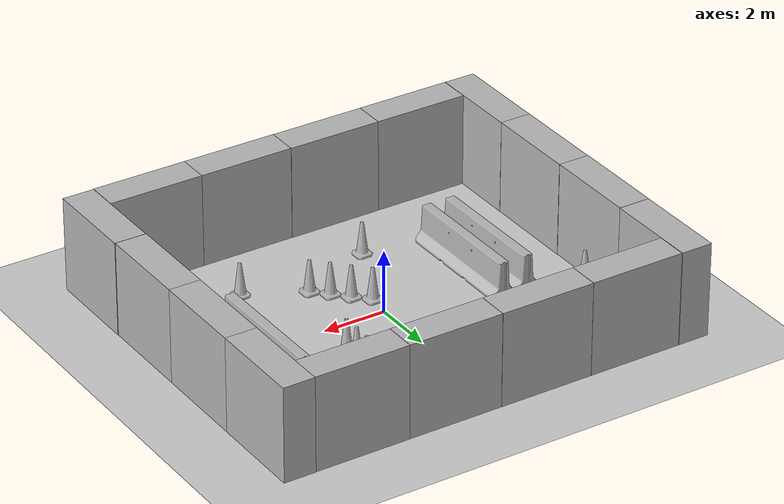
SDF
<sdf version="1.7">
 <world name="default">
  <light name="sun" type="directional">
   <cast_shadows>0</cast_shadows>
   <pose>0 0 10 0 -0 0</pose>
   <diffuse>0.8 0.8 0.8 1</diffuse>
   <specular>0.2 0.2 0.2 1</specular>
   <attenuation>
    <range>1000</range>
    <constant>0.9</constant>
    <linear>0.01</linear>
    <quadratic>0.001</quadratic>
   </attenuation>
   <direction>-0.5 0.1 -0.9</direction>
   <spot><inner_angle>0</inner_angle><outer_angle>0</outer_angle><falloff>0</falloff></spot>
  </light>
  <model name="ground_plane">
   <static>1</static>
   <link name="link">
    <collision name="collision">
     <geometry><plane><normal>0 0 1</normal><size>100 100</size></plane></geometry>
     <surface><friction><ode><mu>100</mu><mu2>50</mu2></ode></friction></surface>
    </collision>
    <visual name="visual">
     <cast_shadows>0</cast_shadows>
     <geometry><plane><normal>0 0 1</normal><size>100 100</size></plane></geometry>
     <material>
      <script><uri>file://media/materials/scripts/gazebo.material</uri><name>Gazebo/Grey</name></script>
     </material>
    </visual>
   </link>
  </model>
  <gravity>0 0 -9.8</gravity>
  <magnetic_field>6e-06 2.3e-05 -4.2e-05</magnetic_field>
  <atmosphere type="adiabatic"/>
  <physics name="default_physics" default="0" type="ode">
   <max_step_size>0.001</max_step_size>
   <real_time_factor>1</real_time_factor>
   <real_time_update_rate>1000</real_time_update_rate>
  </physics>
  <scene><ambient>0.4 0.4 0.4 1</ambient><background>0.7 0.7 0.7 1</background><shadows>0</shadows></scene>
  <spherical_coordinates>
   <surface_model>EARTH_WGS84</surface_model>
   <latitude_deg>0</latitude_deg>
   <longitude_deg>0</longitude_deg>
   <elevation>0</elevation>
   <heading_deg>0</heading_deg>
  </spherical_coordinates>
  <model name="brick_box_3x1x3">
   <static>1</static>
   <link name="chassis">
    <pose>0 0 1.5 0 -0 0</pose>
    <collision name="collision"><geometry><box><size>3 1 3</size></box></geometry></collision>
    <visual name="visual">
     <geometry><mesh><uri>model://brick_box_3x1x3/meshes/simple_box.dae</uri><scale>3 1 3</scale></mesh></geometry>
     <material>
      <script>
       <uri>model://brick_box_3x1x3/materials/scripts</uri>
       <uri>model://brick_box_3x1x3/materials/textures</uri>
       <name>BrickBox/Diffuse</name>
      </script>
     </material>
    </visual>
   </link>
   <pose>1.49178 -5.50804 0 0 -0 0</pose>
  </model>
  <model name="brick_box_3x1x3_0">
   <static>1</static>
   <link name="chassis">
    <pose>0 0 1.5 0 -0 0</pose>
    <collision name="collision"><geometry><box><size>3 1 3</size></box></geometry></collision>
    <visual name="visual">
     <geometry><mesh><uri>model://brick_box_3x1x3/meshes/simple_box.dae</uri><scale>3 1 3</scale></mesh></geometry>
     <material>
      <script>
       <uri>model://brick_box_3x1x3/materials/scripts</uri>
       <uri>model://brick_box_3x1x3/materials/textures</uri>
       <name>BrickBox/Diffuse</name>
      </script>
     </material>
    </visual>
   </link>
   <pose>-1.51043 -5.50036 0 0 -0 0</pose>
  </model>
  <model name="brick_box_3x1x3_1">
   <static>1</static>
   <link name="chassis">
    <pose>0 0 1.5 0 -0 0</pose>
    <collision name="collision"><geometry><box><size>3 1 3</size></box></geometry></collision>
    <visual name="visual">
     <geometry><mesh><uri>model://brick_box_3x1x3/meshes/simple_box.dae</uri><scale>3 1 3</scale></mesh></geometry>
     <material>
      <script>
       <uri>model://brick_box_3x1x3/materials/scripts</uri>
       <uri>model://brick_box_3x1x3/materials/textures</uri>
       <name>BrickBox/Diffuse</name>
      </script>
     </material>
    </visual>
   </link>
   <pose>1.50118 5.49225 0 0 -0 0</pose>
  </model>
  <model name="brick_box_3x1x3_2">
   <static>1</static>
   <link name="chassis">
    <pose>0 0 1.5 0 -0 0</pose>
    <collision name="collision"><geometry><box><size>3 1 3</size></box></geometry></collision>
    <visual name="visual">
     <geometry><mesh><uri>model://brick_box_3x1x3/meshes/simple_box.dae</uri><scale>3 1 3</scale></mesh></geometry>
     <material>
      <script>
       <uri>model://brick_box_3x1x3/materials/scripts</uri>
       <uri>model://brick_box_3x1x3/materials/textures</uri>
       <name>BrickBox/Diffuse</name>
      </script>
     </material>
    </visual>
   </link>
   <pose>-1.50348 5.4941 0 0 -0 0</pose>
  </model>
  <model name="brick_box_3x1x3_3">
   <static>1</static>
   <link name="chassis">
    <pose>0 0 1.5 0 -0 0</pose>
    <collision name="collision"><geometry><box><size>3 1 3</size></box></geometry></collision>
    <visual name="visual">
     <geometry><mesh><uri>model://brick_box_3x1x3/meshes/simple_box.dae</uri><scale>3 1 3</scale></mesh></geometry>
     <material>
      <script>
       <uri>model://brick_box_3x1x3/materials/scripts</uri>
       <uri>model://brick_box_3x1x3/materials/textures</uri>
       <name>BrickBox/Diffuse</name>
      </script>
     </material>
    </visual>
   </link>
   <pose>-6.5207 4.49478 0 0 -0 1.57257</pose>
  </model>
  <model name="brick_box_3x1x3_4">
   <static>1</static>
   <link name="chassis">
    <pose>0 0 1.5 0 -0 0</pose>
    <collision name="collision"><geometry><box><size>3 1 3</size></box></geometry></collision>
    <visual name="visual">
     <geometry><mesh><uri>model://brick_box_3x1x3/meshes/simple_box.dae</uri><scale>3 1 3</scale></mesh></geometry>
     <material>
      <script>
       <uri>model://brick_box_3x1x3/materials/scripts</uri>
       <uri>model://brick_box_3x1x3/materials/textures</uri>
       <name>BrickBox/Diffuse</name>
      </script>
     </material>
    </visual>
   </link>
   <pose>-4.50856 5.49143 0 0 -0 0</pose>
  </model>
  <model name="brick_box_3x1x3_5">
   <static>1</static>
   <link name="chassis">
    <pose>0 0 1.5 0 -0 0</pose>
    <collision name="collision"><geometry><box><size>3 1 3</size></box></geometry></collision>
    <visual name="visual">
     <geometry><mesh><uri>model://brick_box_3x1x3/meshes/simple_box.dae</uri><scale>3 1 3</scale></mesh></geometry>
     <material>
      <script>
       <uri>model://brick_box_3x1x3/materials/scripts</uri>
       <uri>model://brick_box_3x1x3/materials/textures</uri>
       <name>BrickBox/Diffuse</name>
      </script>
     </material>
    </visual>
   </link>
   <pose>4.5061 5.49704 0 0 -0 0</pose>
  </model>
  <model name="brick_box_3x1x3_6">
   <static>1</static>
   <link name="chassis">
    <pose>0 0 1.5 0 -0 0</pose>
    <collision name="collision"><geometry><box><size>3 1 3</size></box></geometry></collision>
    <visual name="visual">
     <geometry><mesh><uri>model://brick_box_3x1x3/meshes/simple_box.dae</uri><scale>3 1 3</scale></mesh></geometry>
     <material>
      <script>
       <uri>model://brick_box_3x1x3/materials/scripts</uri>
       <uri>model://brick_box_3x1x3/materials/textures</uri>
       <name>BrickBox/Diffuse</name>
      </script>
     </material>
    </visual>
   </link>
   <pose>-4.51318 -5.50466 0 0 -0 0</pose>
  </model>
  <model name="brick_box_3x1x3_7">
   <static>1</static>
   <link name="chassis">
    <pose>0 0 1.5 0 -0 0</pose>
    <collision name="collision"><geometry><box><size>3 1 3</size></box></geometry></collision>
    <visual name="visual">
     <geometry><mesh><uri>model://brick_box_3x1x3/meshes/simple_box.dae</uri><scale>3 1 3</scale></mesh></geometry>
     <material>
      <script>
       <uri>model://brick_box_3x1x3/materials/scripts</uri>
       <uri>model://brick_box_3x1x3/materials/textures</uri>
       <name>BrickBox/Diffuse</name>
      </script>
     </material>
    </visual>
   </link>
   <pose>4.49333 -5.50629 0 0 -0 0</pose>
  </model>
  <model name="brick_box_3x1x3_3_clone">
   <static>1</static>
   <link name="chassis">
    <pose>0 0 1.5 0 -0 0</pose>
    <collision name="collision"><geometry><box><size>3 1 3</size></box></geometry></collision>
    <visual name="visual">
     <geometry><mesh><uri>model://brick_box_3x1x3/meshes/simple_box.dae</uri><scale>3 1 3</scale></mesh></geometry>
     <material>
      <script>
       <uri>model://brick_box_3x1x3/materials/scripts</uri>
       <uri>model://brick_box_3x1x3/materials/textures</uri>
       <name>BrickBox/Diffuse</name>
      </script>
     </material>
    </visual>
   </link>
   <pose>-6.52126 1.48858 3e-06 -0.001926 1e-05 1.56943</pose>
  </model>
  <model name="brick_box_3x1x3_3_clone_clone">
   <static>1</static>
   <link name="chassis">
    <pose>0 0 1.5 0 -0 0</pose>
    <collision name="collision"><geometry><box><size>3 1 3</size></box></geometry></collision>
    <visual name="visual">
     <geometry><mesh><uri>model://brick_box_3x1x3/meshes/simple_box.dae</uri><scale>3 1 3</scale></mesh></geometry>
     <material>
      <script>
       <uri>model://brick_box_3x1x3/materials/scripts</uri>
       <uri>model://brick_box_3x1x3/materials/textures</uri>
       <name>BrickBox/Diffuse</name>
      </script>
     </material>
    </visual>
   </link>
   <pose>-6.51467 -1.50944 3e-06 -0.001926 1e-05 1.56943</pose>
  </model>
  <model name="brick_box_3x1x3_3_clone_clone_clone">
   <static>1</static>
   <link name="chassis">
    <pose>0 0 1.5 0 -0 0</pose>
    <collision name="collision"><geometry><box><size>3 1 3</size></box></geometry></collision>
    <visual name="visual">
     <geometry><mesh><uri>model://brick_box_3x1x3/meshes/simple_box.dae</uri><scale>3 1 3</scale></mesh></geometry>
     <material>
      <script>
       <uri>model://brick_box_3x1x3/materials/scripts</uri>
       <uri>model://brick_box_3x1x3/materials/textures</uri>
       <name>BrickBox/Diffuse</name>
      </script>
     </material>
    </visual>
   </link>
   <pose>-6.5148 -4.5007 3e-06 -0.001926 1e-05 1.56943</pose>
  </model>
  <model name="brick_box_3x1x3_3_clone_clone_clone_0">
   <static>1</static>
   <link name="chassis">
    <pose>0 0 1.5 0 -0 0</pose>
    <collision name="collision"><geometry><box><size>3 1 3</size></box></geometry></collision>
    <visual name="visual">
     <geometry><mesh><uri>model://brick_box_3x1x3/meshes/simple_box.dae</uri><scale>3 1 3</scale></mesh></geometry>
     <material>
      <script>
       <uri>model://brick_box_3x1x3/materials/scripts</uri>
       <uri>model://brick_box_3x1x3/materials/textures</uri>
       <name>BrickBox/Diffuse</name>
      </script>
     </material>
    </visual>
   </link>
   <pose>6.50742 -4.4923 2.3e-05 -0.001926 1e-05 1.56943</pose>
  </model>
  <model name="brick_box_3x1x3_3_clone_clone_clone_1">
   <static>1</static>
   <link name="chassis">
    <pose>0 0 1.5 0 -0 0</pose>
    <collision name="collision"><geometry><box><size>3 1 3</size></box></geometry></collision>
    <visual name="visual">
     <geometry><mesh><uri>model://brick_box_3x1x3/meshes/simple_box.dae</uri><scale>3 1 3</scale></mesh></geometry>
     <material>
      <script>
       <uri>model://brick_box_3x1x3/materials/scripts</uri>
       <uri>model://brick_box_3x1x3/materials/textures</uri>
       <name>BrickBox/Diffuse</name>
      </script>
     </material>
    </visual>
   </link>
   <pose>6.49863 -1.48204 3e-06 -0.001926 1e-05 1.56943</pose>
  </model>
  <model name="brick_box_3x1x3_3_clone_clone_clone_2">
   <static>1</static>
   <link name="chassis">
    <pose>0 0 1.5 0 -0 0</pose>
    <collision name="collision"><geometry><box><size>3 1 3</size></box></geometry></collision>
    <visual name="visual">
     <geometry><mesh><uri>model://brick_box_3x1x3/meshes/simple_box.dae</uri><scale>3 1 3</scale></mesh></geometry>
     <material>
      <script>
       <uri>model://brick_box_3x1x3/materials/scripts</uri>
       <uri>model://brick_box_3x1x3/materials/textures</uri>
       <name>BrickBox/Diffuse</name>
      </script>
     </material>
    </visual>
   </link>
   <pose>6.50304 1.51015 3e-06 -0.001926 1e-05 1.56943</pose>
  </model>
  <model name="brick_box_3x1x3_3_clone_clone_clone_3">
   <static>1</static>
   <link name="chassis">
    <pose>0 0 1.5 0 -0 0</pose>
    <collision name="collision"><geometry><box><size>3 1 3</size></box></geometry></collision>
    <visual name="visual">
     <geometry><mesh><uri>model://brick_box_3x1x3/meshes/simple_box.dae</uri><scale>3 1 3</scale></mesh></geometry>
     <material>
      <script>
       <uri>model://brick_box_3x1x3/materials/scripts</uri>
       <uri>model://brick_box_3x1x3/materials/textures</uri>
       <name>BrickBox/Diffuse</name>
      </script>
     </material>
    </visual>
   </link>
   <pose>6.50831 4.5085 3e-06 -0.001926 1e-05 1.56943</pose>
  </model>
  <model name="jersey_barrier">
   <static>1</static>
   <link name="link">
    <visual name="visual">
     <geometry><mesh><uri>model://jersey_barrier/meshes/jersey_barrier.dae</uri></mesh></geometry>
    </visual>
    <collision name="upright">
     <pose>0 0 0.5715 0 -0 0</pose>
     <geometry><box><size>4.06542 0.3063 1.143</size></box></geometry>
    </collision>
    <collision name="base">
     <pose>0 0 0.032258 0 -0 0</pose>
     <geometry><box><size>4.06542 0.8107 0.064516</size></box></geometry>
    </collision>
    <collision name="base2">
     <pose>0 0 0.1 0 -0 0</pose>
     <geometry><box><size>4.06542 0.65 0.1</size></box></geometry>
    </collision>
    <collision name="base3">
     <pose>0 0 0.2 0 -0 0</pose>
     <geometry><box><size>4.06542 0.5 0.1</size></box></geometry>
    </collision>
    <collision name="left-angle">
     <pose>0 -0.224 0.2401 0.9 -0 0</pose>
     <geometry><box><size>4.06542 0.5 0.064516</size></box></geometry>
    </collision>
    <collision name="right-angle">
     <pose>0 0.224 0.2401 -0.9 0 0</pose>
     <geometry><box><size>4.06542 0.5 0.064516</size></box></geometry>
    </collision>
   </link>
   <pose>4.13112 0.407065 0 0 -0 1.57269</pose>
  </model>
  <model name="jersey_barrier_0">
   <static>1</static>
   <link name="link">
    <visual name="visual">
     <geometry><mesh><uri>model://jersey_barrier/meshes/jersey_barrier.dae</uri></mesh></geometry>
    </visual>
    <collision name="upright">
     <pose>0 0 0.5715 0 -0 0</pose>
     <geometry><box><size>4.06542 0.3063 1.143</size></box></geometry>
    </collision>
    <collision name="base">
     <pose>0 0 0.032258 0 -0 0</pose>
     <geometry><box><size>4.06542 0.8107 0.064516</size></box></geometry>
    </collision>
    <collision name="base2">
     <pose>0 0 0.1 0 -0 0</pose>
     <geometry><box><size>4.06542 0.65 0.1</size></box></geometry>
    </collision>
    <collision name="base3">
     <pose>0 0 0.2 0 -0 0</pose>
     <geometry><box><size>4.06542 0.5 0.1</size></box></geometry>
    </collision>
    <collision name="left-angle">
     <pose>0 -0.224 0.2401 0.9 -0 0</pose>
     <geometry><box><size>4.06542 0.5 0.064516</size></box></geometry>
    </collision>
    <collision name="right-angle">
     <pose>0 0.224 0.2401 -0.9 0 0</pose>
     <geometry><box><size>4.06542 0.5 0.064516</size></box></geometry>
    </collision>
   </link>
   <pose>-1.61492 3.01266 0 0 -0 0</pose>
  </model>
  <model name="Construction Cone_1">
   <link name="link">
    <collision name="collision">
     <geometry>
      <mesh><scale>10 10 10</scale><uri>model://construction_cone/meshes/construction_cone.dae</uri></mesh>
     </geometry>
    </collision>
    <visual name="visual">
     <geometry>
      <mesh><scale>10 10 10</scale><uri>model://construction_cone/meshes/construction_cone.dae</uri></mesh>
     </geometry>
    </visual>
    <inertial>
     <inertia><ixx>1</ixx><ixy>0</ixy><ixz>0</ixz><iyy>1</iyy><iyz>0</iyz><izz>1</izz></inertia>
     <mass>1</mass>
    </inertial>
   </link>
   <pose>-1.21411 -3.06872 -0 0 -0 0</pose>
  </model>
  <model name="Construction Cone">
   <link name="link">
    <collision name="collision">
     <geometry>
      <mesh><scale>10 10 10</scale><uri>model://construction_cone/meshes/construction_cone.dae</uri></mesh>
     </geometry>
    </collision>
    <visual name="visual">
     <geometry>
      <mesh><scale>10 10 10</scale><uri>model://construction_cone/meshes/construction_cone.dae</uri></mesh>
     </geometry>
    </visual>
    <inertial>
     <inertia><ixx>1</ixx><ixy>0</ixy><ixz>0</ixz><iyy>1</iyy><iyz>0</iyz><izz>1</izz></inertia>
     <mass>1</mass>
    </inertial>
   </link>
   <pose>5.71892 -2.09758 -0 0 -0 0</pose>
  </model>
  <model name="Construction Cone_0">
   <link name="link">
    <collision name="collision">
     <geometry>
      <mesh><scale>10 10 10</scale><uri>model://construction_cone/meshes/construction_cone.dae</uri></mesh>
     </geometry>
    </collision>
    <visual name="visual">
     <geometry>
      <mesh><scale>10 10 10</scale><uri>model://construction_cone/meshes/construction_cone.dae</uri></mesh>
     </geometry>
    </visual>
    <inertial>
     <inertia><ixx>1</ixx><ixy>0</ixy><ixz>0</ixz><iyy>1</iyy><iyz>0</iyz><izz>1</izz></inertia>
     <mass>1</mass>
    </inertial>
   </link>
   <pose>1.21981 -2.05463 -0 0 -0 0</pose>
  </model>
  <model name="Construction Cone_2">
   <link name="link">
    <collision name="collision">
     <geometry>
      <mesh><scale>10 10 10</scale><uri>model://construction_cone/meshes/construction_cone.dae</uri></mesh>
     </geometry>
    </collision>
    <visual name="visual">
     <geometry>
      <mesh><scale>10 10 10</scale><uri>model://construction_cone/meshes/construction_cone.dae</uri></mesh>
     </geometry>
    </visual>
    <inertial>
     <inertia><ixx>1</ixx><ixy>0</ixy><ixz>0</ixz><iyy>1</iyy><iyz>0</iyz><izz>1</izz></inertia>
     <mass>1</mass>
    </inertial>
   </link>
   <pose>0.790492 -1.61448 -0 0 -1e-06 0</pose>
  </model>
  <model name="Construction Cone_3">
   <link name="link">
    <collision name="collision">
     <geometry>
      <mesh><scale>10 10 10</scale><uri>model://construction_cone/meshes/construction_cone.dae</uri></mesh>
     </geometry>
    </collision>
    <visual name="visual">
     <geometry>
      <mesh><scale>10 10 10</scale><uri>model://construction_cone/meshes/construction_cone.dae</uri></mesh>
     </geometry>
    </visual>
    <inertial>
     <inertia><ixx>1</ixx><ixy>0</ixy><ixz>0</ixz><iyy>1</iyy><iyz>0</iyz><izz>1</izz></inertia>
     <mass>1</mass>
    </inertial>
   </link>
   <pose>0.363027 -1.16063 -0 0 -1e-06 0</pose>
  </model>
  <model name="Construction Cone_4">
   <link name="link">
    <collision name="collision">
     <geometry>
      <mesh><scale>10 10 10</scale><uri>model://construction_cone/meshes/construction_cone.dae</uri></mesh>
     </geometry>
    </collision>
    <visual name="visual">
     <geometry>
      <mesh><scale>10 10 10</scale><uri>model://construction_cone/meshes/construction_cone.dae</uri></mesh>
     </geometry>
    </visual>
    <inertial>
     <inertia><ixx>1</ixx><ixy>0</ixy><ixz>0</ixz><iyy>1</iyy><iyz>0</iyz><izz>1</izz></inertia>
     <mass>1</mass>
    </inertial>
   </link>
   <pose>-0.086667 -0.722874 -0 0 -1e-06 0</pose>
  </model>
  <model name="Construction Cone_5">
   <link name="link">
    <collision name="collision">
     <geometry>
      <mesh><scale>10 10 10</scale><uri>model://construction_cone/meshes/construction_cone.dae</uri></mesh>
     </geometry>
    </collision>
    <visual name="visual">
     <geometry>
      <mesh><scale>10 10 10</scale><uri>model://construction_cone/meshes/construction_cone.dae</uri></mesh>
     </geometry>
    </visual>
    <inertial>
     <inertia><ixx>1</ixx><ixy>0</ixy><ixz>0</ixz><iyy>1</iyy><iyz>0</iyz><izz>1</izz></inertia>
     <mass>1</mass>
    </inertial>
   </link>
   <pose>2.05301 1.79987 -0 0 -0 0</pose>
  </model>
  <model name="Construction Cone_6">
   <link name="link">
    <collision name="collision">
     <geometry>
      <mesh><scale>10 10 10</scale><uri>model://construction_cone/meshes/construction_cone.dae</uri></mesh>
     </geometry>
    </collision>
    <visual name="visual">
     <geometry>
      <mesh><scale>10 10 10</scale><uri>model://construction_cone/meshes/construction_cone.dae</uri></mesh>
     </geometry>
    </visual>
    <inertial>
     <inertia><ixx>1</ixx><ixy>0</ixy><ixz>0</ixz><iyy>1</iyy><iyz>0</iyz><izz>1</izz></inertia>
     <mass>1</mass>
    </inertial>
   </link>
   <pose>2.06202 2.33566 -0 0 -0 0</pose>
  </model>
  <model name="Construction Cone_7">
   <link name="link">
    <collision name="collision">
     <geometry>
      <mesh><scale>10 10 10</scale><uri>model://construction_cone/meshes/construction_cone.dae</uri></mesh>
     </geometry>
    </collision>
    <visual name="visual">
     <geometry>
      <mesh><scale>10 10 10</scale><uri>model://construction_cone/meshes/construction_cone.dae</uri></mesh>
     </geometry>
    </visual>
    <inertial>
     <inertia><ixx>1</ixx><ixy>0</ixy><ixz>0</ixz><iyy>1</iyy><iyz>0</iyz><izz>1</izz></inertia>
     <mass>1</mass>
    </inertial>
   </link>
   <pose>2.04852 2.86378 -0 0 -1e-06 0</pose>
  </model>
  <model name="Construction Cone_8">
   <link name="link">
    <collision name="collision">
     <geometry>
      <mesh><scale>10 10 10</scale><uri>model://construction_cone/meshes/construction_cone.dae</uri></mesh>
     </geometry>
    </collision>
    <visual name="visual">
     <geometry>
      <mesh><scale>10 10 10</scale><uri>model://construction_cone/meshes/construction_cone.dae</uri></mesh>
     </geometry>
    </visual>
    <inertial>
     <inertia><ixx>1</ixx><ixy>0</ixy><ixz>0</ixz><iyy>1</iyy><iyz>0</iyz><izz>1</izz></inertia>
     <mass>1</mass>
    </inertial>
   </link>
   <pose>2.05022 1.26242 -0 0 -1e-06 0</pose>
  </model>
  <model name="Construction Cone_9">
   <link name="link">
    <collision name="collision">
     <geometry>
      <mesh><scale>10 10 10</scale><uri>model://construction_cone/meshes/construction_cone.dae</uri></mesh>
     </geometry>
    </collision>
    <visual name="visual">
     <geometry>
      <mesh><scale>10 10 10</scale><uri>model://construction_cone/meshes/construction_cone.dae</uri></mesh>
     </geometry>
    </visual>
    <inertial>
     <inertia><ixx>1</ixx><ixy>0</ixy><ixz>0</ixz><iyy>1</iyy><iyz>0</iyz><izz>1</izz></inertia>
     <mass>1</mass>
    </inertial>
   </link>
   <pose>4.12302 2.69138 -0 0 -0 0.001076</pose>
  </model>
  <model name="jersey_barrier_1">
   <static>1</static>
   <link name="link">
    <visual name="visual">
     <geometry><mesh><uri>model://jersey_barrier/meshes/jersey_barrier.dae</uri></mesh></geometry>
    </visual>
    <collision name="upright">
     <pose>0 0 0.5715 0 -0 0</pose>
     <geometry><box><size>4.06542 0.3063 1.143</size></box></geometry>
    </collision>
    <collision name="base">
     <pose>0 0 0.032258 0 -0 0</pose>
     <geometry><box><size>4.06542 0.8107 0.064516</size></box></geometry>
    </collision>
    <collision name="base2">
     <pose>0 0 0.1 0 -0 0</pose>
     <geometry><box><size>4.06542 0.65 0.1</size></box></geometry>
    </collision>
    <collision name="base3">
     <pose>0 0 0.2 0 -0 0</pose>
     <geometry><box><size>4.06542 0.5 0.1</size></box></geometry>
    </collision>
    <collision name="left-angle">
     <pose>0 -0.224 0.2401 0.9 -0 0</pose>
     <geometry><box><size>4.06542 0.5 0.064516</size></box></geometry>
    </collision>
    <collision name="right-angle">
     <pose>0 0.224 0.2401 -0.9 0 0</pose>
     <geometry><box><size>4.06542 0.5 0.064516</size></box></geometry>
    </collision>
   </link>
   <pose>-4.14761 -0.850315 0 0 -0 1.57637</pose>
  </model>
  <model name="jersey_barrier_2">
   <static>1</static>
   <link name="link">
    <visual name="visual">
     <geometry><mesh><uri>model://jersey_barrier/meshes/jersey_barrier.dae</uri></mesh></geometry>
    </visual>
    <collision name="upright">
     <pose>0 0 0.5715 0 -0 0</pose>
     <geometry><box><size>4.06542 0.3063 1.143</size></box></geometry>
    </collision>
    <collision name="base">
     <pose>0 0 0.032258 0 -0 0</pose>
     <geometry><box><size>4.06542 0.8107 0.064516</size></box></geometry>
    </collision>
    <collision name="base2">
     <pose>0 0 0.1 0 -0 0</pose>
     <geometry><box><size>4.06542 0.65 0.1</size></box></geometry>
    </collision>
    <collision name="base3">
     <pose>0 0 0.2 0 -0 0</pose>
     <geometry><box><size>4.06542 0.5 0.1</size></box></geometry>
    </collision>
    <collision name="left-angle">
     <pose>0 -0.224 0.2401 0.9 -0 0</pose>
     <geometry><box><size>4.06542 0.5 0.064516</size></box></geometry>
    </collision>
    <collision name="right-angle">
     <pose>0 0.224 0.2401 -0.9 0 0</pose>
     <geometry><box><size>4.06542 0.5 0.064516</size></box></geometry>
    </collision>
   </link>
   <pose>-3.33528 -0.861897 0 0 -0 1.57413</pose>
  </model>
  <model name="Construction Cone_10">
   <link name="link">
    <collision name="collision">
     <geometry>
      <mesh><scale>10 10 10</scale><uri>model://construction_cone/meshes/construction_cone.dae</uri></mesh>
     </geometry>
    </collision>
    <visual name="visual">
     <geometry>
      <mesh><scale>10 10 10</scale><uri>model://construction_cone/meshes/construction_cone.dae</uri></mesh>
     </geometry>
    </visual>
    <inertial>
     <inertia><ixx>1</ixx><ixy>0</ixy><ixz>0</ixz><iyy>1</iyy><iyz>0</iyz><izz>1</izz></inertia>
     <mass>1</mass>
    </inertial>
   </link>
   <pose>2.98912 -2.97565 -0 0 -0 0</pose>
  </model>
  <model name="Construction Cone_11">
   <link name="link">
    <collision name="collision">
     <geometry>
      <mesh><scale>10 10 10</scale><uri>model://construction_cone/meshes/construction_cone.dae</uri></mesh>
     </geometry>
    </collision>
    <visual name="visual">
     <geometry>
      <mesh><scale>10 10 10</scale><uri>model://construction_cone/meshes/construction_cone.dae</uri></mesh>
     </geometry>
    </visual>
    <inertial>
     <inertia><ixx>1</ixx><ixy>0</ixy><ixz>0</ixz><iyy>1</iyy><iyz>0</iyz><izz>1</izz></inertia>
     <mass>1</mass>
    </inertial>
   </link>
   <pose>-1.73381 4.72035 -0 0 -0 0</pose>
  </model>
  <model name="Construction Cone_12">
   <link name="link">
    <collision name="collision">
     <geometry>
      <mesh><scale>10 10 10</scale><uri>model://construction_cone/meshes/construction_cone.dae</uri></mesh>
     </geometry>
    </collision>
    <visual name="visual">
     <geometry>
      <mesh><scale>10 10 10</scale><uri>model://construction_cone/meshes/construction_cone.dae</uri></mesh>
     </geometry>
    </visual>
    <inertial>
     <inertia><ixx>1</ixx><ixy>0</ixy><ixz>0</ixz><iyy>1</iyy><iyz>0</iyz><izz>1</izz></inertia>
     <mass>1</mass>
    </inertial>
   </link>
   <pose>-5.74396 1.75665 -0 0 -0 0</pose>
  </model>
 </world>
</sdf>
